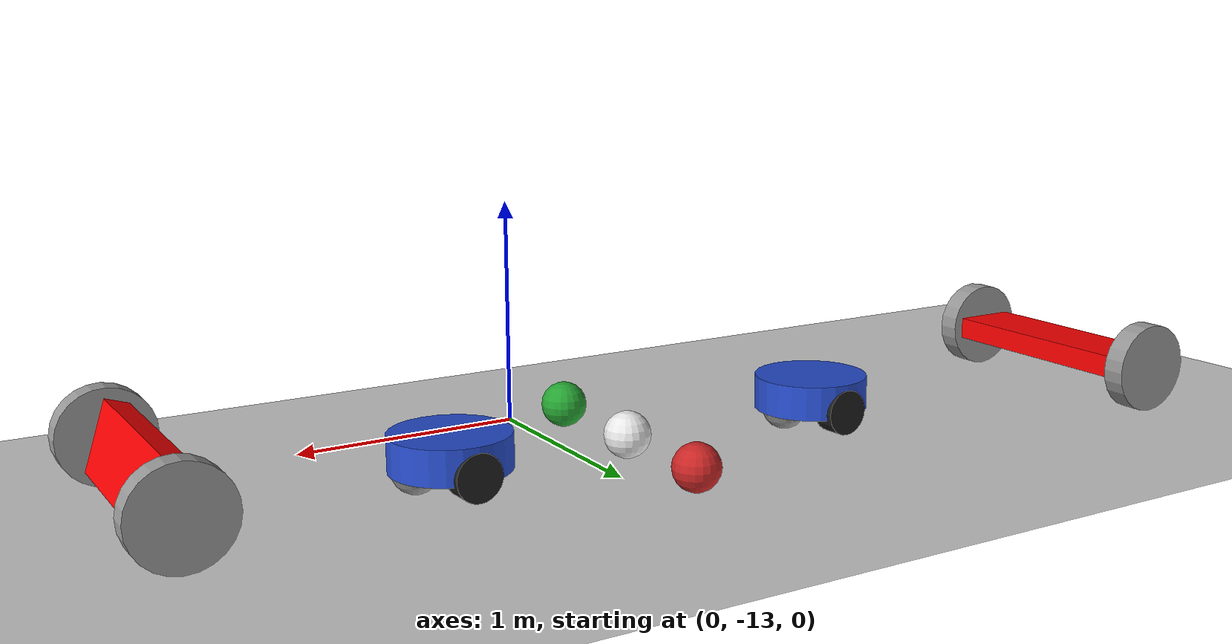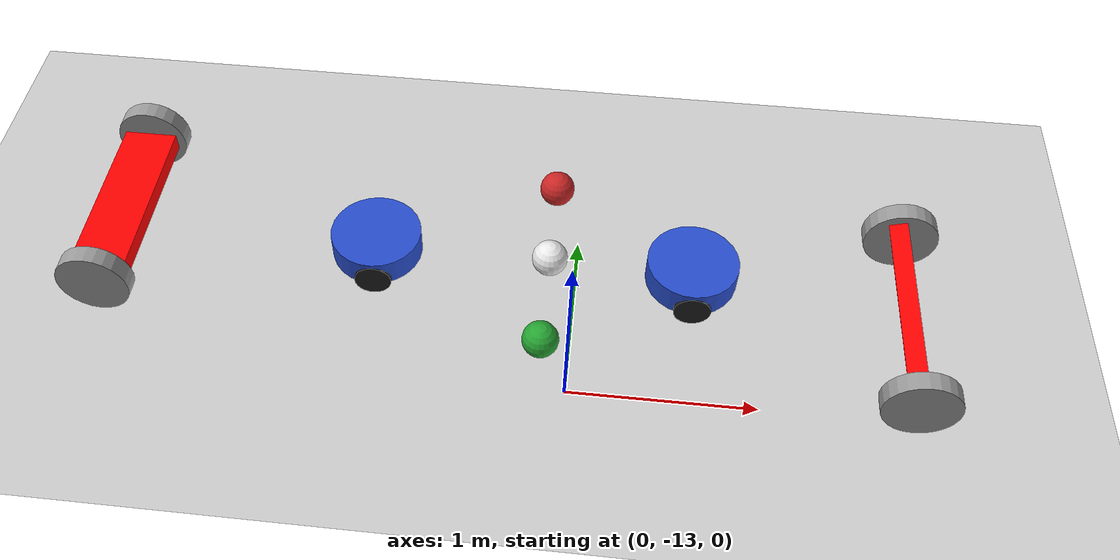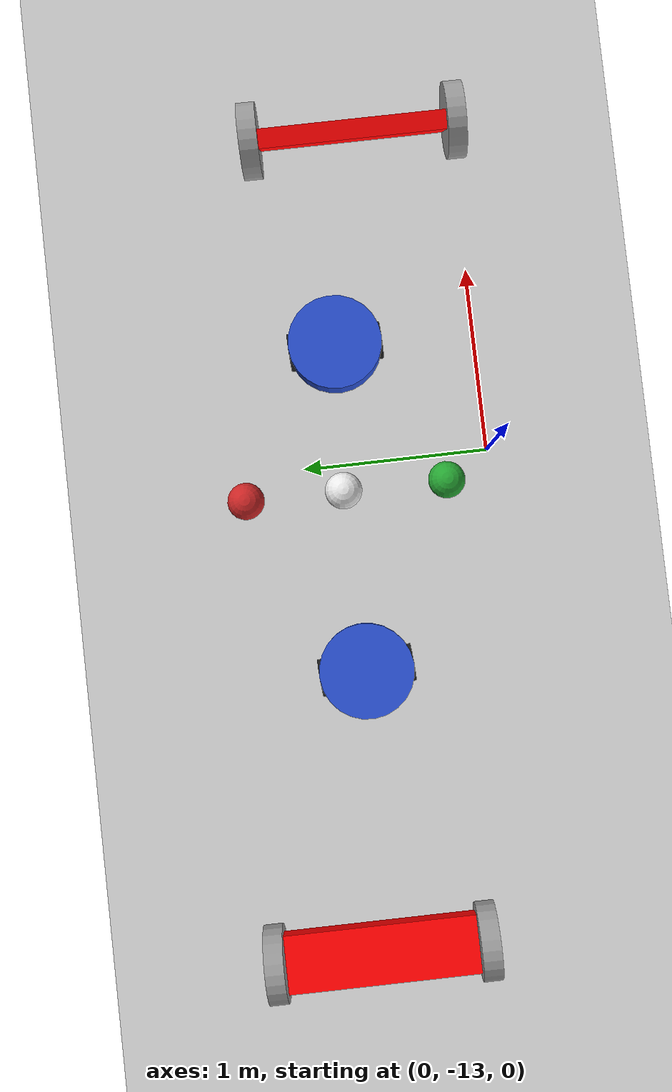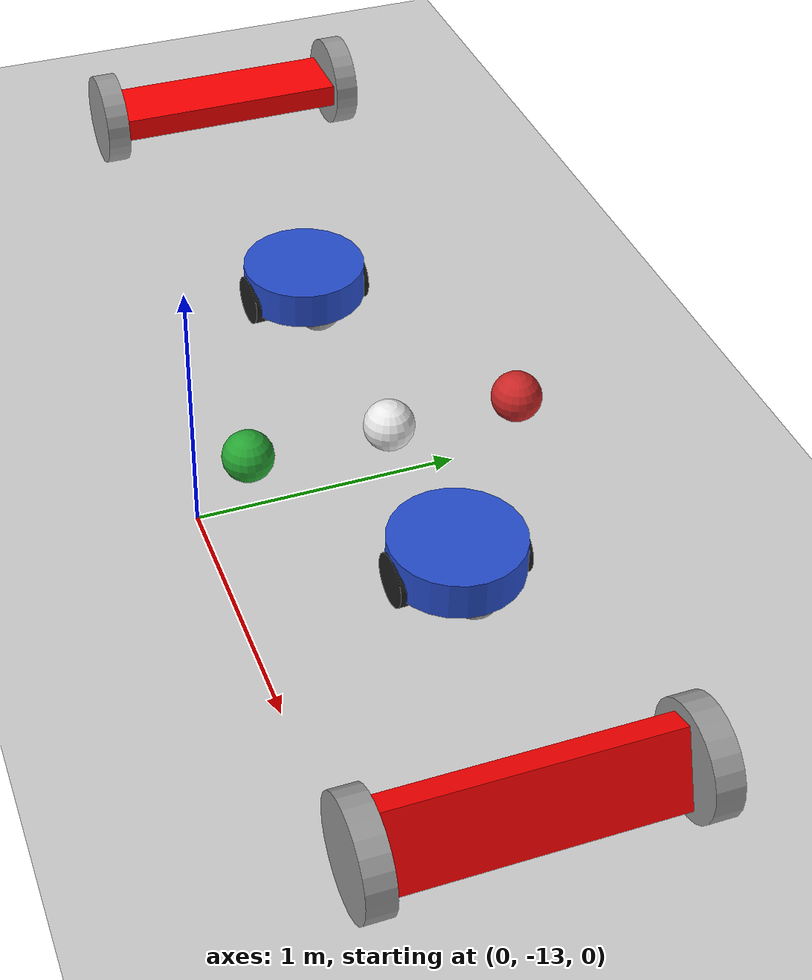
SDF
<sdf version="1.6">
 <world name="default">
  <model name="ground_plane">
   <static>1</static>
   <link name="link">
    <collision name="collision">
     <geometry><plane><normal>0 0 1</normal><size>100 100</size></plane></geometry>
     <surface><friction><ode><mu>100</mu><mu2>50</mu2></ode></friction></surface>
    </collision>
    <visual name="visual">
     <cast_shadows>0</cast_shadows>
     <geometry><plane><normal>0 0 1</normal><size>100 100</size></plane></geometry>
     <material>
      <script><uri>file://media/materials/scripts/gazebo.material</uri><name>Gazebo/Grey</name></script>
     </material>
    </visual>
   </link>
  </model>
  <model name="Tartufino_0">
   <link name="link_0">
    <pose>0 -0 0.04 0 -0 0</pose>
    <inertial>
     <mass>1</mass>
     <inertia><ixx>0.145833</ixx><ixy>0</ixy><ixz>0</ixz><iyy>0.145833</iyy><iyz>0</iyz><izz>0.125</izz></inertia>
    </inertial>
    <visual name="visual">
     <geometry><cylinder><radius>0.25</radius><length>0.15</length></cylinder></geometry>
     <material>
      <lighting>1</lighting>
      <script><uri>file://media/materials/scripts/gazebo.material</uri><name>Gazebo/Blue</name></script>
      <ambient>0.13 0.44 0.7 1</ambient>
      <diffuse>0 0 0 1</diffuse>
      <specular>0.1 0.1 0.1 1</specular>
      <emissive>0 0 0 1</emissive>
      <shader type="vertex"><normal_map>__default__</normal_map></shader>
     </material>
    </visual>
    <collision name="collision">
     <geometry><cylinder><radius>0.25</radius><length>0.15</length></cylinder></geometry>
     <surface>
      <friction>
       <ode><mu>1</mu><mu2>1</mu2><fdir1>0 0 0</fdir1><slip1>0</slip1><slip2>0</slip2></ode>
       <torsional>
        <coefficient>1</coefficient>
        <patch_radius>0</patch_radius>
        <surface_radius>0</surface_radius>
        <use_patch_radius>1</use_patch_radius>
        <ode><slip>0</slip></ode>
       </torsional>
      </friction>
      <bounce><restitution_coefficient>0</restitution_coefficient><threshold>1e+06</threshold></bounce>
      <contact>
       <collide_without_contact>0</collide_without_contact>
       <collide_without_contact_bitmask>1</collide_without_contact_bitmask>
       <collide_bitmask>1</collide_bitmask>
       <ode>
        <soft_cfm>0</soft_cfm>
        <soft_erp>0.2</soft_erp>
        <kp>1e+13</kp>
        <kd>1</kd>
        <max_vel>0.01</max_vel>
        <min_depth>0</min_depth>
       </ode>
       <bullet>
        <split_impulse>1</split_impulse>
        <split_impulse_penetration_threshold>-0.01</split_impulse_penetration_threshold>
        <soft_cfm>0</soft_cfm>
        <soft_erp>0.2</soft_erp>
        <kp>1e+13</kp>
        <kd>1</kd>
       </bullet>
      </contact>
     </surface>
    </collision>
   </link>
   <link name="link_1">
    <pose>0 0.2 -0.01 0 -0 0</pose>
    <inertial>
     <mass>1</mass>
     <inertia><ixx>0.145833</ixx><ixy>0</ixy><ixz>0</ixz><iyy>0.145833</iyy><iyz>0</iyz><izz>0.125</izz></inertia>
    </inertial>
    <visual name="visual">
     <pose>0 0 0 1.5708 -0 0</pose>
     <geometry><cylinder><radius>0.1</radius><length>0.1</length></cylinder></geometry>
     <material>
      <lighting>1</lighting>
      <script><uri>file://media/materials/scripts/gazebo.material</uri><name>Gazebo/Black</name></script>
      <ambient>0 0 0 1</ambient>
      <diffuse>0 0 0 1</diffuse>
      <specular>0.1 0.1 0.1 1</specular>
      <emissive>0 0 0 1</emissive>
      <shader type="vertex"><normal_map>__default__</normal_map></shader>
     </material>
    </visual>
    <collision name="collision">
     <pose>0 0 0 1.5708 -0 0</pose>
     <geometry><cylinder><radius>0.1</radius><length>0.1</length></cylinder></geometry>
     <surface>
      <friction>
       <ode><mu>1</mu><mu2>1</mu2><fdir1>0 0 0</fdir1><slip1>0</slip1><slip2>0</slip2></ode>
       <torsional>
        <coefficient>1</coefficient>
        <patch_radius>0</patch_radius>
        <surface_radius>0</surface_radius>
        <use_patch_radius>1</use_patch_radius>
        <ode><slip>0</slip></ode>
       </torsional>
      </friction>
      <bounce><restitution_coefficient>0</restitution_coefficient><threshold>1e+06</threshold></bounce>
      <contact>
       <collide_without_contact>0</collide_without_contact>
       <collide_without_contact_bitmask>1</collide_without_contact_bitmask>
       <collide_bitmask>1</collide_bitmask>
       <ode>
        <soft_cfm>0</soft_cfm>
        <soft_erp>0.2</soft_erp>
        <kp>1e+13</kp>
        <kd>1</kd>
        <max_vel>0.01</max_vel>
        <min_depth>0</min_depth>
       </ode>
       <bullet>
        <split_impulse>1</split_impulse>
        <split_impulse_penetration_threshold>-0.01</split_impulse_penetration_threshold>
        <soft_cfm>0</soft_cfm>
        <soft_erp>0.2</soft_erp>
        <kp>1e+13</kp>
        <kd>1</kd>
       </bullet>
      </contact>
     </surface>
    </collision>
   </link>
   <link name="link_1_clone">
    <pose>-0 -0.2 -0.01 0 -0 0</pose>
    <inertial>
     <mass>1</mass>
     <inertia><ixx>0.145833</ixx><ixy>0</ixy><ixz>0</ixz><iyy>0.145833</iyy><iyz>0</iyz><izz>0.125</izz></inertia>
    </inertial>
    <visual name="visual">
     <pose>0 0 0 1.5708 -0 0</pose>
     <geometry><cylinder><radius>0.1</radius><length>0.1</length></cylinder></geometry>
     <material>
      <lighting>1</lighting>
      <script><uri>file://media/materials/scripts/gazebo.material</uri><name>Gazebo/Black</name></script>
      <ambient>0 0 0 1</ambient>
      <diffuse>0 0 0 1</diffuse>
      <specular>0.1 0.1 0.1 1</specular>
      <emissive>0 0 0 1</emissive>
      <shader type="vertex"><normal_map>__default__</normal_map></shader>
     </material>
    </visual>
    <collision name="collision">
     <pose>0 0 0 1.5708 -0 0</pose>
     <geometry><cylinder><radius>0.1</radius><length>0.1</length></cylinder></geometry>
     <surface>
      <friction>
       <ode><mu>1</mu><mu2>1</mu2><fdir1>0 0 0</fdir1><slip1>0</slip1><slip2>0</slip2></ode>
       <torsional>
        <coefficient>1</coefficient>
        <patch_radius>0</patch_radius>
        <surface_radius>0</surface_radius>
        <use_patch_radius>1</use_patch_radius>
        <ode><slip>0</slip></ode>
       </torsional>
      </friction>
      <bounce><restitution_coefficient>0</restitution_coefficient><threshold>1e+06</threshold></bounce>
      <contact>
       <collide_without_contact>0</collide_without_contact>
       <collide_without_contact_bitmask>1</collide_without_contact_bitmask>
       <collide_bitmask>1</collide_bitmask>
       <ode>
        <soft_cfm>0</soft_cfm>
        <soft_erp>0.2</soft_erp>
        <kp>1e+13</kp>
        <kd>1</kd>
        <max_vel>0.01</max_vel>
        <min_depth>0</min_depth>
       </ode>
       <bullet>
        <split_impulse>1</split_impulse>
        <split_impulse_penetration_threshold>-0.01</split_impulse_penetration_threshold>
        <soft_cfm>0</soft_cfm>
        <soft_erp>0.2</soft_erp>
        <kp>1e+13</kp>
        <kd>1</kd>
       </bullet>
      </contact>
     </surface>
    </collision>
   </link>
   <link name="link_2">
    <pose>-0.15 0 -0.01 0 -0 0</pose>
    <inertial>
     <mass>1</mass>
     <inertia><ixx>0.1</ixx><ixy>0</ixy><ixz>0</ixz><iyy>0.1</iyy><iyz>0</iyz><izz>0.1</izz></inertia>
    </inertial>
    <visual name="visual">
     <geometry><sphere><radius>0.1</radius></sphere></geometry>
     <material>
      <lighting>1</lighting>
      <script><uri>file://media/materials/scripts/gazebo.material</uri><name>Gazebo/Grey</name></script>
      <ambient>0.3 0.3 0.3 1</ambient>
      <diffuse>0.7 0.7 0.7 1</diffuse>
      <specular>0.01 0.01 0.01 1</specular>
      <emissive>0 0 0 1</emissive>
      <shader type="vertex"><normal_map>__default__</normal_map></shader>
     </material>
    </visual>
    <collision name="collision">
     <geometry><sphere><radius>0.1</radius></sphere></geometry>
     <surface>
      <friction>
       <ode><mu>0</mu><mu2>0</mu2><fdir1>0 0 0</fdir1><slip1>1</slip1><slip2>1</slip2></ode>
       <torsional>
        <coefficient>1</coefficient>
        <patch_radius>0</patch_radius>
        <surface_radius>0</surface_radius>
        <use_patch_radius>1</use_patch_radius>
        <ode><slip>0</slip></ode>
       </torsional>
      </friction>
      <bounce><restitution_coefficient>0</restitution_coefficient><threshold>1e+06</threshold></bounce>
      <contact>
       <collide_without_contact>0</collide_without_contact>
       <collide_without_contact_bitmask>1</collide_without_contact_bitmask>
       <collide_bitmask>1</collide_bitmask>
       <ode>
        <soft_cfm>0</soft_cfm>
        <soft_erp>0.2</soft_erp>
        <kp>1e+13</kp>
        <kd>1</kd>
        <max_vel>0.01</max_vel>
        <min_depth>0</min_depth>
       </ode>
       <bullet>
        <split_impulse>1</split_impulse>
        <split_impulse_penetration_threshold>-0.01</split_impulse_penetration_threshold>
        <soft_cfm>0</soft_cfm>
        <soft_erp>0.2</soft_erp>
        <kp>1e+13</kp>
        <kd>1</kd>
       </bullet>
      </contact>
     </surface>
    </collision>
   </link>
   <link name="link_2_clone">
    <pose>0.15 0 -0.01 0 -0 0</pose>
    <inertial>
     <mass>1</mass>
     <inertia><ixx>0.1</ixx><ixy>0</ixy><ixz>0</ixz><iyy>0.1</iyy><iyz>0</iyz><izz>0.1</izz></inertia>
    </inertial>
    <visual name="visual">
     <geometry><sphere><radius>0.1</radius></sphere></geometry>
     <material>
      <lighting>1</lighting>
      <script><uri>file://media/materials/scripts/gazebo.material</uri><name>Gazebo/Grey</name></script>
      <ambient>0.3 0.3 0.3 1</ambient>
      <diffuse>0.7 0.7 0.7 1</diffuse>
      <specular>0.01 0.01 0.01 1</specular>
      <emissive>0 0 0 1</emissive>
      <shader type="vertex"><normal_map>__default__</normal_map></shader>
     </material>
    </visual>
    <collision name="collision">
     <geometry><sphere><radius>0.1</radius></sphere></geometry>
     <surface>
      <friction>
       <ode><mu>0</mu><mu2>0</mu2><fdir1>0 0 0</fdir1><slip1>1</slip1><slip2>1</slip2></ode>
       <torsional>
        <coefficient>1</coefficient>
        <patch_radius>0</patch_radius>
        <surface_radius>0</surface_radius>
        <use_patch_radius>1</use_patch_radius>
        <ode><slip>0</slip></ode>
       </torsional>
      </friction>
      <bounce><restitution_coefficient>0</restitution_coefficient><threshold>1e+06</threshold></bounce>
      <contact>
       <collide_without_contact>0</collide_without_contact>
       <collide_without_contact_bitmask>1</collide_without_contact_bitmask>
       <collide_bitmask>1</collide_bitmask>
       <ode>
        <soft_cfm>0</soft_cfm>
        <soft_erp>0.2</soft_erp>
        <kp>1e+13</kp>
        <kd>1</kd>
        <max_vel>0.01</max_vel>
        <min_depth>0</min_depth>
       </ode>
       <bullet>
        <split_impulse>1</split_impulse>
        <split_impulse_penetration_threshold>-0.01</split_impulse_penetration_threshold>
        <soft_cfm>0</soft_cfm>
        <soft_erp>0.2</soft_erp>
        <kp>1e+13</kp>
        <kd>1</kd>
       </bullet>
      </contact>
     </surface>
    </collision>
   </link>
   <joint name="link_0_JOINT_1" type="revolute">
    <parent>link_0</parent>
    <child>link_1</child>
    <axis>
     <xyz>0 -1 0</xyz>
     <use_parent_model_frame>0</use_parent_model_frame>
     <limit>
      <lower>-1.79769e+308</lower>
      <upper>1.79769e+308</upper>
      <effort>-1</effort>
      <velocity>-1</velocity>
     </limit>
     <dynamics>
      <spring_reference>0</spring_reference>
      <spring_stiffness>0</spring_stiffness>
      <damping>0</damping>
      <friction>0</friction>
     </dynamics>
    </axis>
    <physics>
     <ode><limit><cfm>0</cfm><erp>0.2</erp></limit><suspension><cfm>0</cfm><erp>0.2</erp></suspension></ode>
    </physics>
   </joint>
   <joint name="link_0_JOINT_2" type="revolute">
    <parent>link_0</parent>
    <child>link_1_clone</child>
    <pose>0 -0.01 0 0 -0 0</pose>
    <axis>
     <xyz>0 1 0</xyz>
     <use_parent_model_frame>0</use_parent_model_frame>
     <limit>
      <lower>-1.79769e+308</lower>
      <upper>1.79769e+308</upper>
      <effort>-1</effort>
      <velocity>-1</velocity>
     </limit>
     <dynamics>
      <spring_reference>0</spring_reference>
      <spring_stiffness>0</spring_stiffness>
      <damping>0</damping>
      <friction>0</friction>
     </dynamics>
    </axis>
    <physics>
     <ode><limit><cfm>0</cfm><erp>0.2</erp></limit><suspension><cfm>0</cfm><erp>0.2</erp></suspension></ode>
    </physics>
   </joint>
   <joint name="link_0_JOINT_4" type="fixed">
    <parent>link_0</parent>
    <child>link_2</child>
    <physics>
     <ode><limit><cfm>0</cfm><erp>0.2</erp></limit><suspension><cfm>0</cfm><erp>0.2</erp></suspension></ode>
    </physics>
   </joint>
   <joint name="link_0_JOINT_5" type="fixed">
    <parent>link_0</parent>
    <child>link_2_clone</child>
    <pose>0 0 -0.01 0 -0 0</pose>
    <physics>
     <ode><limit><cfm>0</cfm><erp>0.2</erp></limit><suspension><cfm>0</cfm><erp>0.2</erp></suspension></ode>
    </physics>
   </joint>
   <static>0</static>
   <pose>-1.11249 -12.2195 0.119993 0 1.1e-05 0.064633</pose>
  </model>
  <model name="robot_0">
   <link name="link_1">
    <inertial>
     <mass>1</mass>
     <inertia>
      <ixx>0.166667</ixx>
      <ixy>0</ixy>
      <ixz>0</ixz>
      <iyy>0.166667</iyy>
      <iyz>0</iyz>
      <izz>0.166667</izz>
     </inertia>
    </inertial>
    <visual name="visual">
     <geometry><box><size>0.3 1 0.1</size></box></geometry>
     <material>
      <lighting>1</lighting>
      <script><uri>file://media/materials/scripts/gazebo.material</uri><name>Gazebo/Grey</name></script>
      <ambient>1 0 0 1</ambient>
      <diffuse>1 0 0 1</diffuse>
      <specular>0.1 0.1 0.1 1</specular>
      <emissive>0 0 0 1</emissive>
      <shader type="vertex"><normal_map>__default__</normal_map></shader>
     </material>
    </visual>
    <collision name="collision">
     <geometry><box><size>0.3 1 0.1</size></box></geometry>
     <surface>
      <friction>
       <ode><mu>1</mu><mu2>1</mu2><fdir1>0 0 0</fdir1><slip1>0</slip1><slip2>0</slip2></ode>
       <torsional>
        <coefficient>1</coefficient>
        <patch_radius>0</patch_radius>
        <surface_radius>0</surface_radius>
        <use_patch_radius>1</use_patch_radius>
        <ode><slip>0</slip></ode>
       </torsional>
      </friction>
      <bounce><restitution_coefficient>0</restitution_coefficient><threshold>1e+06</threshold></bounce>
      <contact>
       <collide_without_contact>0</collide_without_contact>
       <collide_without_contact_bitmask>1</collide_without_contact_bitmask>
       <collide_bitmask>1</collide_bitmask>
       <ode>
        <soft_cfm>0</soft_cfm>
        <soft_erp>0.2</soft_erp>
        <kp>1e+13</kp>
        <kd>1</kd>
        <max_vel>0.01</max_vel>
        <min_depth>0</min_depth>
       </ode>
       <bullet>
        <split_impulse>1</split_impulse>
        <split_impulse_penetration_threshold>-0.01</split_impulse_penetration_threshold>
        <soft_cfm>0</soft_cfm>
        <soft_erp>0.2</soft_erp>
        <kp>1e+13</kp>
        <kd>1</kd>
       </bullet>
      </contact>
     </surface>
    </collision>
   </link>
   <link name="link_3">
    <pose>-0 0.550019 -0 1.5707 -0 0</pose>
    <inertial>
     <mass>1</mass>
     <inertia><ixx>0.145833</ixx><ixy>0</ixy><ixz>0</ixz><iyy>0.145833</iyy><iyz>0</iyz><izz>0.125</izz></inertia>
    </inertial>
    <visual name="visual">
     <geometry><cylinder><radius>0.2</radius><length>0.1</length></cylinder></geometry>
     <material>
      <lighting>1</lighting>
      <script><uri>file://media/materials/scripts/gazebo.material</uri><name>Gazebo/Grey</name></script>
      <ambient>0 0 0 1</ambient>
      <diffuse>0 0 0 1</diffuse>
      <specular>0.1 0.1 0.1 1</specular>
      <emissive>0 0 0 1</emissive>
      <shader type="vertex"><normal_map>__default__</normal_map></shader>
     </material>
    </visual>
    <collision name="collision">
     <geometry><cylinder><radius>0.2</radius><length>0.1</length></cylinder></geometry>
     <surface>
      <friction>
       <ode><mu>1</mu><mu2>1</mu2><fdir1>0 0 0</fdir1><slip1>0</slip1><slip2>0</slip2></ode>
       <torsional>
        <coefficient>1</coefficient>
        <patch_radius>0</patch_radius>
        <surface_radius>0</surface_radius>
        <use_patch_radius>1</use_patch_radius>
        <ode><slip>0</slip></ode>
       </torsional>
      </friction>
      <bounce><restitution_coefficient>0</restitution_coefficient><threshold>1e+06</threshold></bounce>
      <contact>
       <collide_without_contact>0</collide_without_contact>
       <collide_without_contact_bitmask>1</collide_without_contact_bitmask>
       <collide_bitmask>1</collide_bitmask>
       <ode>
        <soft_cfm>0</soft_cfm>
        <soft_erp>0.2</soft_erp>
        <kp>1e+13</kp>
        <kd>1</kd>
        <max_vel>0.01</max_vel>
        <min_depth>0</min_depth>
       </ode>
       <bullet>
        <split_impulse>1</split_impulse>
        <split_impulse_penetration_threshold>-0.01</split_impulse_penetration_threshold>
        <soft_cfm>0</soft_cfm>
        <soft_erp>0.2</soft_erp>
        <kp>1e+13</kp>
        <kd>1</kd>
       </bullet>
      </contact>
     </surface>
    </collision>
   </link>
   <link name="link_3_clone">
    <pose>0 -0.550019 0 1.5707 -0 0</pose>
    <inertial>
     <mass>1</mass>
     <inertia><ixx>0.145833</ixx><ixy>0</ixy><ixz>0</ixz><iyy>0.145833</iyy><iyz>0</iyz><izz>0.125</izz></inertia>
    </inertial>
    <visual name="visual">
     <geometry><cylinder><radius>0.2</radius><length>0.1</length></cylinder></geometry>
     <material>
      <lighting>1</lighting>
      <script><uri>file://media/materials/scripts/gazebo.material</uri><name>Gazebo/Grey</name></script>
      <ambient>0 0 0 1</ambient>
      <diffuse>0 0 0 1</diffuse>
      <specular>0.1 0.1 0.1 1</specular>
      <emissive>0 0 0 1</emissive>
      <shader type="vertex"><normal_map>__default__</normal_map></shader>
     </material>
    </visual>
    <collision name="collision">
     <geometry><cylinder><radius>0.2</radius><length>0.1</length></cylinder></geometry>
     <surface>
      <friction>
       <ode><mu>1</mu><mu2>1</mu2><fdir1>0 0 0</fdir1><slip1>0</slip1><slip2>0</slip2></ode>
       <torsional>
        <coefficient>1</coefficient>
        <patch_radius>0</patch_radius>
        <surface_radius>0</surface_radius>
        <use_patch_radius>1</use_patch_radius>
        <ode><slip>0</slip></ode>
       </torsional>
      </friction>
      <bounce><restitution_coefficient>0</restitution_coefficient><threshold>1e+06</threshold></bounce>
      <contact>
       <collide_without_contact>0</collide_without_contact>
       <collide_without_contact_bitmask>1</collide_without_contact_bitmask>
       <collide_bitmask>1</collide_bitmask>
       <ode>
        <soft_cfm>0</soft_cfm>
        <soft_erp>0.2</soft_erp>
        <kp>1e+13</kp>
        <kd>1</kd>
        <max_vel>0.01</max_vel>
        <min_depth>0</min_depth>
       </ode>
       <bullet>
        <split_impulse>1</split_impulse>
        <split_impulse_penetration_threshold>-0.01</split_impulse_penetration_threshold>
        <soft_cfm>0</soft_cfm>
        <soft_erp>0.2</soft_erp>
        <kp>1e+13</kp>
        <kd>1</kd>
       </bullet>
      </contact>
     </surface>
    </collision>
   </link>
   <joint name="link_1_JOINT_2" type="revolute">
    <parent>link_1</parent>
    <child>link_3_clone</child>
    <axis>
     <xyz>0 1 0</xyz>
     <use_parent_model_frame>0</use_parent_model_frame>
     <limit>
      <lower>-1.79769e+308</lower>
      <upper>1.79769e+308</upper>
      <effort>-1</effort>
      <velocity>-1</velocity>
     </limit>
     <dynamics>
      <spring_reference>0</spring_reference>
      <spring_stiffness>0</spring_stiffness>
      <damping>0</damping>
      <friction>0</friction>
     </dynamics>
    </axis>
    <physics>
     <ode><limit><cfm>0</cfm><erp>0.2</erp></limit><suspension><cfm>0</cfm><erp>0.2</erp></suspension></ode>
    </physics>
   </joint>
   <joint name="link_1_JOINT_4" type="revolute">
    <parent>link_1</parent>
    <child>link_3</child>
    <axis>
     <xyz>0 -1 0</xyz>
     <use_parent_model_frame>0</use_parent_model_frame>
     <limit>
      <lower>-1.79769e+308</lower>
      <upper>1.79769e+308</upper>
      <effort>-1</effort>
      <velocity>-1</velocity>
     </limit>
     <dynamics>
      <spring_reference>0</spring_reference>
      <spring_stiffness>0</spring_stiffness>
      <damping>0</damping>
      <friction>0</friction>
     </dynamics>
    </axis>
    <physics>
     <ode><limit><cfm>0</cfm><erp>0.2</erp></limit><suspension><cfm>0</cfm><erp>0.2</erp></suspension></ode>
    </physics>
   </joint>
   <static>0</static>
   <pose>-2.56201 -12.1408 0.210005 0 -0 0</pose>
  </model>
  <model name="Tartufino">
   <link name="link_0">
    <pose>0 -0 0.04 0 -0 0</pose>
    <inertial>
     <mass>1</mass>
     <inertia><ixx>0.145833</ixx><ixy>0</ixy><ixz>0</ixz><iyy>0.145833</iyy><iyz>0</iyz><izz>0.125</izz></inertia>
    </inertial>
    <visual name="visual">
     <geometry><cylinder><radius>0.25</radius><length>0.15</length></cylinder></geometry>
     <material>
      <lighting>1</lighting>
      <script><uri>file://media/materials/scripts/gazebo.material</uri><name>Gazebo/Blue</name></script>
      <ambient>0.13 0.44 0.7 1</ambient>
      <diffuse>0 0 0 1</diffuse>
      <specular>0.1 0.1 0.1 1</specular>
      <emissive>0 0 0 1</emissive>
      <shader type="vertex"><normal_map>__default__</normal_map></shader>
     </material>
    </visual>
    <collision name="collision">
     <geometry><cylinder><radius>0.25</radius><length>0.15</length></cylinder></geometry>
     <surface>
      <friction>
       <ode><mu>1</mu><mu2>1</mu2><fdir1>0 0 0</fdir1><slip1>0</slip1><slip2>0</slip2></ode>
       <torsional>
        <coefficient>1</coefficient>
        <patch_radius>0</patch_radius>
        <surface_radius>0</surface_radius>
        <use_patch_radius>1</use_patch_radius>
        <ode><slip>0</slip></ode>
       </torsional>
      </friction>
      <bounce><restitution_coefficient>0</restitution_coefficient><threshold>1e+06</threshold></bounce>
      <contact>
       <collide_without_contact>0</collide_without_contact>
       <collide_without_contact_bitmask>1</collide_without_contact_bitmask>
       <collide_bitmask>1</collide_bitmask>
       <ode>
        <soft_cfm>0</soft_cfm>
        <soft_erp>0.2</soft_erp>
        <kp>1e+13</kp>
        <kd>1</kd>
        <max_vel>0.01</max_vel>
        <min_depth>0</min_depth>
       </ode>
       <bullet>
        <split_impulse>1</split_impulse>
        <split_impulse_penetration_threshold>-0.01</split_impulse_penetration_threshold>
        <soft_cfm>0</soft_cfm>
        <soft_erp>0.2</soft_erp>
        <kp>1e+13</kp>
        <kd>1</kd>
       </bullet>
      </contact>
     </surface>
    </collision>
   </link>
   <link name="link_1">
    <pose>0 0.2 -0.01 0 -0 0</pose>
    <inertial>
     <mass>1</mass>
     <inertia><ixx>0.145833</ixx><ixy>0</ixy><ixz>0</ixz><iyy>0.145833</iyy><iyz>0</iyz><izz>0.125</izz></inertia>
    </inertial>
    <visual name="visual">
     <pose>0 0 0 1.5708 -0 0</pose>
     <geometry><cylinder><radius>0.1</radius><length>0.1</length></cylinder></geometry>
     <material>
      <lighting>1</lighting>
      <script><uri>file://media/materials/scripts/gazebo.material</uri><name>Gazebo/Black</name></script>
      <ambient>0 0 0 1</ambient>
      <diffuse>0 0 0 1</diffuse>
      <specular>0.1 0.1 0.1 1</specular>
      <emissive>0 0 0 1</emissive>
      <shader type="vertex"><normal_map>__default__</normal_map></shader>
     </material>
    </visual>
    <collision name="collision">
     <pose>0 0 0 1.5708 -0 0</pose>
     <geometry><cylinder><radius>0.1</radius><length>0.1</length></cylinder></geometry>
     <surface>
      <friction>
       <ode><mu>1</mu><mu2>1</mu2><fdir1>0 0 0</fdir1><slip1>0</slip1><slip2>0</slip2></ode>
       <torsional>
        <coefficient>1</coefficient>
        <patch_radius>0</patch_radius>
        <surface_radius>0</surface_radius>
        <use_patch_radius>1</use_patch_radius>
        <ode><slip>0</slip></ode>
       </torsional>
      </friction>
      <bounce><restitution_coefficient>0</restitution_coefficient><threshold>1e+06</threshold></bounce>
      <contact>
       <collide_without_contact>0</collide_without_contact>
       <collide_without_contact_bitmask>1</collide_without_contact_bitmask>
       <collide_bitmask>1</collide_bitmask>
       <ode>
        <soft_cfm>0</soft_cfm>
        <soft_erp>0.2</soft_erp>
        <kp>1e+13</kp>
        <kd>1</kd>
        <max_vel>0.01</max_vel>
        <min_depth>0</min_depth>
       </ode>
       <bullet>
        <split_impulse>1</split_impulse>
        <split_impulse_penetration_threshold>-0.01</split_impulse_penetration_threshold>
        <soft_cfm>0</soft_cfm>
        <soft_erp>0.2</soft_erp>
        <kp>1e+13</kp>
        <kd>1</kd>
       </bullet>
      </contact>
     </surface>
    </collision>
   </link>
   <link name="link_1_clone">
    <pose>-0 -0.2 -0.01 0 -0 0</pose>
    <inertial>
     <mass>1</mass>
     <inertia><ixx>0.145833</ixx><ixy>0</ixy><ixz>0</ixz><iyy>0.145833</iyy><iyz>0</iyz><izz>0.125</izz></inertia>
    </inertial>
    <visual name="visual">
     <pose>0 0 0 1.5708 -0 0</pose>
     <geometry><cylinder><radius>0.1</radius><length>0.1</length></cylinder></geometry>
     <material>
      <lighting>1</lighting>
      <script><uri>file://media/materials/scripts/gazebo.material</uri><name>Gazebo/Black</name></script>
      <ambient>0 0 0 1</ambient>
      <diffuse>0 0 0 1</diffuse>
      <specular>0.1 0.1 0.1 1</specular>
      <emissive>0 0 0 1</emissive>
      <shader type="vertex"><normal_map>__default__</normal_map></shader>
     </material>
    </visual>
    <collision name="collision">
     <pose>0 0 0 1.5708 -0 0</pose>
     <geometry><cylinder><radius>0.1</radius><length>0.1</length></cylinder></geometry>
     <surface>
      <friction>
       <ode><mu>1</mu><mu2>1</mu2><fdir1>0 0 0</fdir1><slip1>0</slip1><slip2>0</slip2></ode>
       <torsional>
        <coefficient>1</coefficient>
        <patch_radius>0</patch_radius>
        <surface_radius>0</surface_radius>
        <use_patch_radius>1</use_patch_radius>
        <ode><slip>0</slip></ode>
       </torsional>
      </friction>
      <bounce><restitution_coefficient>0</restitution_coefficient><threshold>1e+06</threshold></bounce>
      <contact>
       <collide_without_contact>0</collide_without_contact>
       <collide_without_contact_bitmask>1</collide_without_contact_bitmask>
       <collide_bitmask>1</collide_bitmask>
       <ode>
        <soft_cfm>0</soft_cfm>
        <soft_erp>0.2</soft_erp>
        <kp>1e+13</kp>
        <kd>1</kd>
        <max_vel>0.01</max_vel>
        <min_depth>0</min_depth>
       </ode>
       <bullet>
        <split_impulse>1</split_impulse>
        <split_impulse_penetration_threshold>-0.01</split_impulse_penetration_threshold>
        <soft_cfm>0</soft_cfm>
        <soft_erp>0.2</soft_erp>
        <kp>1e+13</kp>
        <kd>1</kd>
       </bullet>
      </contact>
     </surface>
    </collision>
   </link>
   <link name="link_2">
    <pose>-0.15 0 -0.01 0 -0 0</pose>
    <inertial>
     <mass>1</mass>
     <inertia><ixx>0.1</ixx><ixy>0</ixy><ixz>0</ixz><iyy>0.1</iyy><iyz>0</iyz><izz>0.1</izz></inertia>
    </inertial>
    <visual name="visual">
     <geometry><sphere><radius>0.1</radius></sphere></geometry>
     <material>
      <lighting>1</lighting>
      <script><uri>file://media/materials/scripts/gazebo.material</uri><name>Gazebo/Grey</name></script>
      <ambient>0.3 0.3 0.3 1</ambient>
      <diffuse>0.7 0.7 0.7 1</diffuse>
      <specular>0.01 0.01 0.01 1</specular>
      <emissive>0 0 0 1</emissive>
      <shader type="vertex"><normal_map>__default__</normal_map></shader>
     </material>
    </visual>
    <collision name="collision">
     <geometry><sphere><radius>0.1</radius></sphere></geometry>
     <surface>
      <friction>
       <ode><mu>0</mu><mu2>0</mu2><fdir1>0 0 0</fdir1><slip1>1</slip1><slip2>1</slip2></ode>
       <torsional>
        <coefficient>1</coefficient>
        <patch_radius>0</patch_radius>
        <surface_radius>0</surface_radius>
        <use_patch_radius>1</use_patch_radius>
        <ode><slip>0</slip></ode>
       </torsional>
      </friction>
      <bounce><restitution_coefficient>0</restitution_coefficient><threshold>1e+06</threshold></bounce>
      <contact>
       <collide_without_contact>0</collide_without_contact>
       <collide_without_contact_bitmask>1</collide_without_contact_bitmask>
       <collide_bitmask>1</collide_bitmask>
       <ode>
        <soft_cfm>0</soft_cfm>
        <soft_erp>0.2</soft_erp>
        <kp>1e+13</kp>
        <kd>1</kd>
        <max_vel>0.01</max_vel>
        <min_depth>0</min_depth>
       </ode>
       <bullet>
        <split_impulse>1</split_impulse>
        <split_impulse_penetration_threshold>-0.01</split_impulse_penetration_threshold>
        <soft_cfm>0</soft_cfm>
        <soft_erp>0.2</soft_erp>
        <kp>1e+13</kp>
        <kd>1</kd>
       </bullet>
      </contact>
     </surface>
    </collision>
   </link>
   <link name="link_2_clone">
    <pose>0.15 0 -0.01 0 -0 0</pose>
    <inertial>
     <mass>1</mass>
     <inertia><ixx>0.1</ixx><ixy>0</ixy><ixz>0</ixz><iyy>0.1</iyy><iyz>0</iyz><izz>0.1</izz></inertia>
    </inertial>
    <visual name="visual">
     <geometry><sphere><radius>0.1</radius></sphere></geometry>
     <material>
      <lighting>1</lighting>
      <script><uri>file://media/materials/scripts/gazebo.material</uri><name>Gazebo/Grey</name></script>
      <ambient>0.3 0.3 0.3 1</ambient>
      <diffuse>0.7 0.7 0.7 1</diffuse>
      <specular>0.01 0.01 0.01 1</specular>
      <emissive>0 0 0 1</emissive>
      <shader type="vertex"><normal_map>__default__</normal_map></shader>
     </material>
    </visual>
    <collision name="collision">
     <geometry><sphere><radius>0.1</radius></sphere></geometry>
     <surface>
      <friction>
       <ode><mu>0</mu><mu2>0</mu2><fdir1>0 0 0</fdir1><slip1>1</slip1><slip2>1</slip2></ode>
       <torsional>
        <coefficient>1</coefficient>
        <patch_radius>0</patch_radius>
        <surface_radius>0</surface_radius>
        <use_patch_radius>1</use_patch_radius>
        <ode><slip>0</slip></ode>
       </torsional>
      </friction>
      <bounce><restitution_coefficient>0</restitution_coefficient><threshold>1e+06</threshold></bounce>
      <contact>
       <collide_without_contact>0</collide_without_contact>
       <collide_without_contact_bitmask>1</collide_without_contact_bitmask>
       <collide_bitmask>1</collide_bitmask>
       <ode>
        <soft_cfm>0</soft_cfm>
        <soft_erp>0.2</soft_erp>
        <kp>1e+13</kp>
        <kd>1</kd>
        <max_vel>0.01</max_vel>
        <min_depth>0</min_depth>
       </ode>
       <bullet>
        <split_impulse>1</split_impulse>
        <split_impulse_penetration_threshold>-0.01</split_impulse_penetration_threshold>
        <soft_cfm>0</soft_cfm>
        <soft_erp>0.2</soft_erp>
        <kp>1e+13</kp>
        <kd>1</kd>
       </bullet>
      </contact>
     </surface>
    </collision>
   </link>
   <joint name="link_0_JOINT_1" type="revolute">
    <parent>link_0</parent>
    <child>link_1</child>
    <axis>
     <xyz>0 -1 0</xyz>
     <use_parent_model_frame>0</use_parent_model_frame>
     <limit>
      <lower>-1.79769e+308</lower>
      <upper>1.79769e+308</upper>
      <effort>-1</effort>
      <velocity>-1</velocity>
     </limit>
     <dynamics>
      <spring_reference>0</spring_reference>
      <spring_stiffness>0</spring_stiffness>
      <damping>0</damping>
      <friction>0</friction>
     </dynamics>
    </axis>
    <physics>
     <ode><limit><cfm>0</cfm><erp>0.2</erp></limit><suspension><cfm>0</cfm><erp>0.2</erp></suspension></ode>
    </physics>
   </joint>
   <joint name="link_0_JOINT_2" type="revolute">
    <parent>link_0</parent>
    <child>link_1_clone</child>
    <pose>0 -0.01 0 0 -0 0</pose>
    <axis>
     <xyz>0 1 0</xyz>
     <use_parent_model_frame>0</use_parent_model_frame>
     <limit>
      <lower>-1.79769e+308</lower>
      <upper>1.79769e+308</upper>
      <effort>-1</effort>
      <velocity>-1</velocity>
     </limit>
     <dynamics>
      <spring_reference>0</spring_reference>
      <spring_stiffness>0</spring_stiffness>
      <damping>0</damping>
      <friction>0</friction>
     </dynamics>
    </axis>
    <physics>
     <ode><limit><cfm>0</cfm><erp>0.2</erp></limit><suspension><cfm>0</cfm><erp>0.2</erp></suspension></ode>
    </physics>
   </joint>
   <joint name="link_0_JOINT_4" type="fixed">
    <parent>link_0</parent>
    <child>link_2</child>
    <physics>
     <ode><limit><cfm>0</cfm><erp>0.2</erp></limit><suspension><cfm>0</cfm><erp>0.2</erp></suspension></ode>
    </physics>
   </joint>
   <joint name="link_0_JOINT_5" type="fixed">
    <parent>link_0</parent>
    <child>link_2_clone</child>
    <pose>0 0 -0.01 0 -0 0</pose>
    <physics>
     <ode><limit><cfm>0</cfm><erp>0.2</erp></limit><suspension><cfm>0</cfm><erp>0.2</erp></suspension></ode>
    </physics>
   </joint>
   <static>0</static>
   <pose>0.633381 -12.2411 0.12 -5e-06 -0 0.038123</pose>
  </model>
  <model name="robot_3">
   <link name="link_1">
    <inertial>
     <mass>1</mass>
     <inertia>
      <ixx>0.166667</ixx>
      <ixy>0</ixy>
      <ixz>0</ixz>
      <iyy>0.166667</iyy>
      <iyz>0</iyz>
      <izz>0.166667</izz>
     </inertia>
    </inertial>
    <visual name="visual">
     <geometry><box><size>0.3 1 0.1</size></box></geometry>
     <material>
      <lighting>1</lighting>
      <script><uri>file://media/materials/scripts/gazebo.material</uri><name>Gazebo/Grey</name></script>
      <ambient>1 0 0 1</ambient>
      <diffuse>1 0 0 1</diffuse>
      <specular>0.1 0.1 0.1 1</specular>
      <emissive>0 0 0 1</emissive>
      <shader type="vertex"><normal_map>__default__</normal_map></shader>
     </material>
    </visual>
    <collision name="collision">
     <geometry><box><size>0.3 1 0.1</size></box></geometry>
     <surface>
      <friction>
       <ode><mu>1</mu><mu2>1</mu2><fdir1>0 0 0</fdir1><slip1>0</slip1><slip2>0</slip2></ode>
       <torsional>
        <coefficient>1</coefficient>
        <patch_radius>0</patch_radius>
        <surface_radius>0</surface_radius>
        <use_patch_radius>1</use_patch_radius>
        <ode><slip>0</slip></ode>
       </torsional>
      </friction>
      <bounce><restitution_coefficient>0</restitution_coefficient><threshold>1e+06</threshold></bounce>
      <contact>
       <collide_without_contact>0</collide_without_contact>
       <collide_without_contact_bitmask>1</collide_without_contact_bitmask>
       <collide_bitmask>1</collide_bitmask>
       <ode>
        <soft_cfm>0</soft_cfm>
        <soft_erp>0.2</soft_erp>
        <kp>1e+13</kp>
        <kd>1</kd>
        <max_vel>0.01</max_vel>
        <min_depth>0</min_depth>
       </ode>
       <bullet>
        <split_impulse>1</split_impulse>
        <split_impulse_penetration_threshold>-0.01</split_impulse_penetration_threshold>
        <soft_cfm>0</soft_cfm>
        <soft_erp>0.2</soft_erp>
        <kp>1e+13</kp>
        <kd>1</kd>
       </bullet>
      </contact>
     </surface>
    </collision>
   </link>
   <link name="link_3">
    <pose>-0 0.550019 -0 1.5707 -0 0</pose>
    <inertial>
     <mass>1</mass>
     <inertia><ixx>0.145833</ixx><ixy>0</ixy><ixz>0</ixz><iyy>0.145833</iyy><iyz>0</iyz><izz>0.125</izz></inertia>
    </inertial>
    <visual name="visual">
     <geometry><cylinder><radius>0.2</radius><length>0.1</length></cylinder></geometry>
     <material>
      <lighting>1</lighting>
      <script><uri>file://media/materials/scripts/gazebo.material</uri><name>Gazebo/Grey</name></script>
      <ambient>0 0 0 1</ambient>
      <diffuse>0 0 0 1</diffuse>
      <specular>0.1 0.1 0.1 1</specular>
      <emissive>0 0 0 1</emissive>
      <shader type="vertex"><normal_map>__default__</normal_map></shader>
     </material>
    </visual>
    <collision name="collision">
     <geometry><cylinder><radius>0.2</radius><length>0.1</length></cylinder></geometry>
     <surface>
      <friction>
       <ode><mu>1</mu><mu2>1</mu2><fdir1>0 0 0</fdir1><slip1>0</slip1><slip2>0</slip2></ode>
       <torsional>
        <coefficient>1</coefficient>
        <patch_radius>0</patch_radius>
        <surface_radius>0</surface_radius>
        <use_patch_radius>1</use_patch_radius>
        <ode><slip>0</slip></ode>
       </torsional>
      </friction>
      <bounce><restitution_coefficient>0</restitution_coefficient><threshold>1e+06</threshold></bounce>
      <contact>
       <collide_without_contact>0</collide_without_contact>
       <collide_without_contact_bitmask>1</collide_without_contact_bitmask>
       <collide_bitmask>1</collide_bitmask>
       <ode>
        <soft_cfm>0</soft_cfm>
        <soft_erp>0.2</soft_erp>
        <kp>1e+13</kp>
        <kd>1</kd>
        <max_vel>0.01</max_vel>
        <min_depth>0</min_depth>
       </ode>
       <bullet>
        <split_impulse>1</split_impulse>
        <split_impulse_penetration_threshold>-0.01</split_impulse_penetration_threshold>
        <soft_cfm>0</soft_cfm>
        <soft_erp>0.2</soft_erp>
        <kp>1e+13</kp>
        <kd>1</kd>
       </bullet>
      </contact>
     </surface>
    </collision>
   </link>
   <link name="link_3_clone">
    <pose>0 -0.550019 0 1.5707 -0 0</pose>
    <inertial>
     <mass>1</mass>
     <inertia><ixx>0.145833</ixx><ixy>0</ixy><ixz>0</ixz><iyy>0.145833</iyy><iyz>0</iyz><izz>0.125</izz></inertia>
    </inertial>
    <visual name="visual">
     <geometry><cylinder><radius>0.2</radius><length>0.1</length></cylinder></geometry>
     <material>
      <lighting>1</lighting>
      <script><uri>file://media/materials/scripts/gazebo.material</uri><name>Gazebo/Grey</name></script>
      <ambient>0 0 0 1</ambient>
      <diffuse>0 0 0 1</diffuse>
      <specular>0.1 0.1 0.1 1</specular>
      <emissive>0 0 0 1</emissive>
      <shader type="vertex"><normal_map>__default__</normal_map></shader>
     </material>
    </visual>
    <collision name="collision">
     <geometry><cylinder><radius>0.2</radius><length>0.1</length></cylinder></geometry>
     <surface>
      <friction>
       <ode><mu>1</mu><mu2>1</mu2><fdir1>0 0 0</fdir1><slip1>0</slip1><slip2>0</slip2></ode>
       <torsional>
        <coefficient>1</coefficient>
        <patch_radius>0</patch_radius>
        <surface_radius>0</surface_radius>
        <use_patch_radius>1</use_patch_radius>
        <ode><slip>0</slip></ode>
       </torsional>
      </friction>
      <bounce><restitution_coefficient>0</restitution_coefficient><threshold>1e+06</threshold></bounce>
      <contact>
       <collide_without_contact>0</collide_without_contact>
       <collide_without_contact_bitmask>1</collide_without_contact_bitmask>
       <collide_bitmask>1</collide_bitmask>
       <ode>
        <soft_cfm>0</soft_cfm>
        <soft_erp>0.2</soft_erp>
        <kp>1e+13</kp>
        <kd>1</kd>
        <max_vel>0.01</max_vel>
        <min_depth>0</min_depth>
       </ode>
       <bullet>
        <split_impulse>1</split_impulse>
        <split_impulse_penetration_threshold>-0.01</split_impulse_penetration_threshold>
        <soft_cfm>0</soft_cfm>
        <soft_erp>0.2</soft_erp>
        <kp>1e+13</kp>
        <kd>1</kd>
       </bullet>
      </contact>
     </surface>
    </collision>
   </link>
   <joint name="link_1_JOINT_2" type="revolute">
    <parent>link_1</parent>
    <child>link_3_clone</child>
    <axis>
     <xyz>0 1 0</xyz>
     <use_parent_model_frame>0</use_parent_model_frame>
     <limit>
      <lower>-1.79769e+308</lower>
      <upper>1.79769e+308</upper>
      <effort>-1</effort>
      <velocity>-1</velocity>
     </limit>
     <dynamics>
      <spring_reference>0</spring_reference>
      <spring_stiffness>0</spring_stiffness>
      <damping>0</damping>
      <friction>0</friction>
     </dynamics>
    </axis>
    <physics>
     <ode><limit><cfm>0</cfm><erp>0.2</erp></limit><suspension><cfm>0</cfm><erp>0.2</erp></suspension></ode>
    </physics>
   </joint>
   <joint name="link_1_JOINT_4" type="revolute">
    <parent>link_1</parent>
    <child>link_3</child>
    <axis>
     <xyz>0 -1 0</xyz>
     <use_parent_model_frame>0</use_parent_model_frame>
     <limit>
      <lower>-1.79769e+308</lower>
      <upper>1.79769e+308</upper>
      <effort>-1</effort>
      <velocity>-1</velocity>
     </limit>
     <dynamics>
      <spring_reference>0</spring_reference>
      <spring_stiffness>0</spring_stiffness>
      <damping>0</damping>
      <friction>0</friction>
     </dynamics>
    </axis>
    <physics>
     <ode><limit><cfm>0</cfm><erp>0.2</erp></limit><suspension><cfm>0</cfm><erp>0.2</erp></suspension></ode>
    </physics>
   </joint>
   <static>0</static>
   <pose>1.7667 -12.4549 0.209997 -3.14158 -1.25645 3.13969</pose>
  </model>
  <model name="my_green_ball_0">
   <link name="link_0">
    <inertial>
     <mass>1</mass>
     <inertia><ixx>0.1</ixx><ixy>0</ixy><ixz>0</ixz><iyy>0.1</iyy><iyz>0</iyz><izz>0.1</izz></inertia>
    </inertial>
    <visual name="visual">
     <geometry><sphere><radius>0.1</radius></sphere></geometry>
     <material>
      <lighting>1</lighting>
      <script><uri>file://media/materials/scripts/gazebo.material</uri><name>Gazebo/Green</name></script>
     </material>
     <cast_shadows>0</cast_shadows>
    </visual>
    <collision name="collision">
     <geometry><sphere><radius>0.1</radius></sphere></geometry>
     <surface>
      <friction>
       <ode><mu>1</mu><mu2>1</mu2><fdir1>0 0 0</fdir1><slip1>0</slip1><slip2>0</slip2></ode>
       <torsional>
        <coefficient>1</coefficient>
        <patch_radius>0</patch_radius>
        <surface_radius>0</surface_radius>
        <use_patch_radius>1</use_patch_radius>
        <ode><slip>0</slip></ode>
       </torsional>
      </friction>
      <bounce><restitution_coefficient>0</restitution_coefficient><threshold>1e+06</threshold></bounce>
      <contact>
       <collide_without_contact>0</collide_without_contact>
       <collide_without_contact_bitmask>1</collide_without_contact_bitmask>
       <collide_bitmask>1</collide_bitmask>
       <ode>
        <soft_cfm>0</soft_cfm>
        <soft_erp>0.2</soft_erp>
        <kp>1e+13</kp>
        <kd>1</kd>
        <max_vel>0.01</max_vel>
        <min_depth>0</min_depth>
       </ode>
       <bullet>
        <split_impulse>1</split_impulse>
        <split_impulse_penetration_threshold>-0.01</split_impulse_penetration_threshold>
        <soft_cfm>0</soft_cfm>
        <soft_erp>0.2</soft_erp>
        <kp>1e+13</kp>
        <kd>1</kd>
       </bullet>
      </contact>
     </surface>
    </collision>
   </link>
   <static>0</static>
   <pose>-0.149239 -12.7582 0.11 0 -0 0</pose>
  </model>
  <model name="my_red_ball">
   <link name="link_0">
    <inertial>
     <mass>1</mass>
     <inertia><ixx>0.1</ixx><ixy>0</ixy><ixz>0</ixz><iyy>0.1</iyy><iyz>0</iyz><izz>0.1</izz></inertia>
    </inertial>
    <visual name="visual">
     <geometry><sphere><radius>0.1</radius></sphere></geometry>
     <material>
      <lighting>1</lighting>
      <script><uri>file://media/materials/scripts/gazebo.material</uri><name>Gazebo/Red</name></script>
     </material>
     <cast_shadows>0</cast_shadows>
    </visual>
    <collision name="collision">
     <geometry><sphere><radius>0.1</radius></sphere></geometry>
     <surface>
      <friction>
       <ode><mu>1</mu><mu2>1</mu2><fdir1>0 0 0</fdir1><slip1>0</slip1><slip2>0</slip2></ode>
       <torsional>
        <coefficient>1</coefficient>
        <patch_radius>0</patch_radius>
        <surface_radius>0</surface_radius>
        <use_patch_radius>1</use_patch_radius>
        <ode><slip>0</slip></ode>
       </torsional>
      </friction>
      <bounce><restitution_coefficient>0</restitution_coefficient><threshold>1e+06</threshold></bounce>
      <contact>
       <collide_without_contact>0</collide_without_contact>
       <collide_without_contact_bitmask>1</collide_without_contact_bitmask>
       <collide_bitmask>1</collide_bitmask>
       <ode>
        <soft_cfm>0</soft_cfm>
        <soft_erp>0.2</soft_erp>
        <kp>1e+13</kp>
        <kd>1</kd>
        <max_vel>0.01</max_vel>
        <min_depth>0</min_depth>
       </ode>
       <bullet>
        <split_impulse>1</split_impulse>
        <split_impulse_penetration_threshold>-0.01</split_impulse_penetration_threshold>
        <soft_cfm>0</soft_cfm>
        <soft_erp>0.2</soft_erp>
        <kp>1e+13</kp>
        <kd>1</kd>
       </bullet>
      </contact>
     </surface>
    </collision>
   </link>
   <static>0</static>
   <pose>-0.147757 -11.6748 0.11 0 -0 0</pose>
  </model>
  <model name="my_white_ball_0">
   <link name="link_0">
    <inertial>
     <mass>1</mass>
     <inertia><ixx>0.1</ixx><ixy>0</ixy><ixz>0</ixz><iyy>0.1</iyy><iyz>0</iyz><izz>0.1</izz></inertia>
    </inertial>
    <visual name="visual">
     <geometry><sphere><radius>0.1</radius></sphere></geometry>
     <material>
      <lighting>1</lighting>
      <script><uri>file://media/materials/scripts/gazebo.material</uri><name>Gazebo/White</name></script>
     </material>
     <cast_shadows>0</cast_shadows>
    </visual>
    <collision name="collision">
     <geometry><sphere><radius>0.1</radius></sphere></geometry>
     <surface>
      <friction>
       <ode><mu>1</mu><mu2>1</mu2><fdir1>0 0 0</fdir1><slip1>0</slip1><slip2>0</slip2></ode>
       <torsional>
        <coefficient>1</coefficient>
        <patch_radius>0</patch_radius>
        <surface_radius>0</surface_radius>
        <use_patch_radius>1</use_patch_radius>
        <ode><slip>0</slip></ode>
       </torsional>
      </friction>
      <bounce><restitution_coefficient>0</restitution_coefficient><threshold>1e+06</threshold></bounce>
      <contact>
       <collide_without_contact>0</collide_without_contact>
       <collide_without_contact_bitmask>1</collide_without_contact_bitmask>
       <collide_bitmask>1</collide_bitmask>
       <ode>
        <soft_cfm>0</soft_cfm>
        <soft_erp>0.2</soft_erp>
        <kp>1e+13</kp>
        <kd>1</kd>
        <max_vel>0.01</max_vel>
        <min_depth>0</min_depth>
       </ode>
       <bullet>
        <split_impulse>1</split_impulse>
        <split_impulse_penetration_threshold>-0.01</split_impulse_penetration_threshold>
        <soft_cfm>0</soft_cfm>
        <soft_erp>0.2</soft_erp>
        <kp>1e+13</kp>
        <kd>1</kd>
       </bullet>
      </contact>
     </surface>
    </collision>
   </link>
   <static>0</static>
   <pose>-0.146843 -12.2007 0.11 0 -0 0</pose>
  </model>
 </world>
</sdf>
